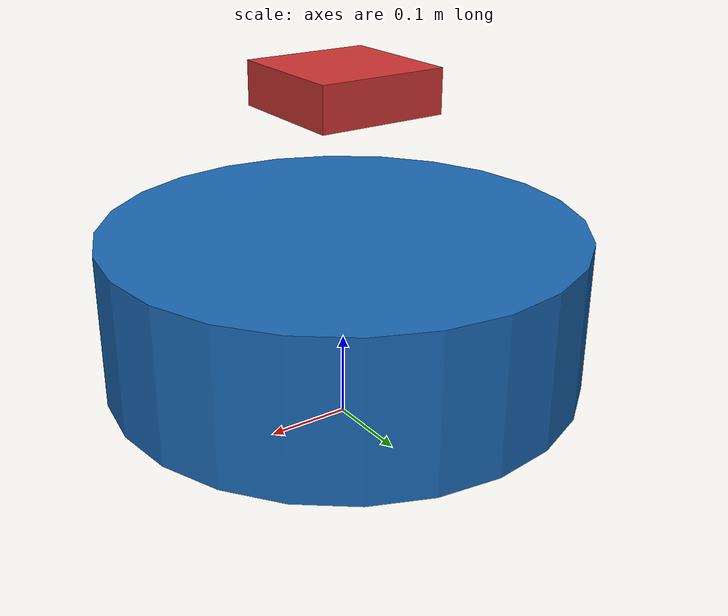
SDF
<?xml version="1.0"?>
<sdf version="1.7">
  <model name="nicholas_mobile_unit">

    <static>false</static>
    <pose>0 0 0.15 0 0 0</pose>

    <!-- Base Structure -->
    <link name="chassis">

      <!-- Physical properties -->
      <inertial>
        <mass>2.1</mass>
        <inertia>
          <ixx>0.018</ixx>
          <iyy>0.020</iyy>
          <izz>0.022</izz>
        </inertia>
      </inertial>

      <!-- Collision representation -->
      <collision name="chassis_collision">
        <geometry>
          <cylinder>
            <radius>0.28</radius>
            <length>0.18</length>
          </cylinder>
        </geometry>
      </collision>

      <!-- Visual representation -->
      <visual name="chassis_visual">
        <geometry>
          <cylinder>
            <radius>0.28</radius>
            <length>0.18</length>
          </cylinder>
        </geometry>

        <material>
          <ambient>0.1 0.4 0.7 1</ambient>
          <diffuse>0.1 0.4 0.7 1</diffuse>
          <specular>0.3 0.3 0.3 1</specular>
        </material>
      </visual>

    </link>

    <!-- Sensor mount (adds uniqueness) -->
    <link name="sensor_mount">
      <pose>0 0 0.25 0 0 0</pose>

      <collision name="sensor_collision">
        <geometry>
          <box>
            <size>0.15 0.15 0.05</size>
          </box>
        </geometry>
      </collision>

      <visual name="sensor_visual">
        <geometry>
          <box>
            <size>0.15 0.15 0.05</size>
          </box>
        </geometry>

        <material>
          <ambient>0.8 0.2 0.2 1</ambient>
          <diffuse>0.8 0.2 0.2 1</diffuse>
        </material>
      </visual>
    </link>

    <!-- Joint connecting mount -->
    <joint name="sensor_joint" type="fixed">
      <parent>chassis</parent>
      <child>sensor_mount</child>
    </joint>

  </model>
</sdf>
